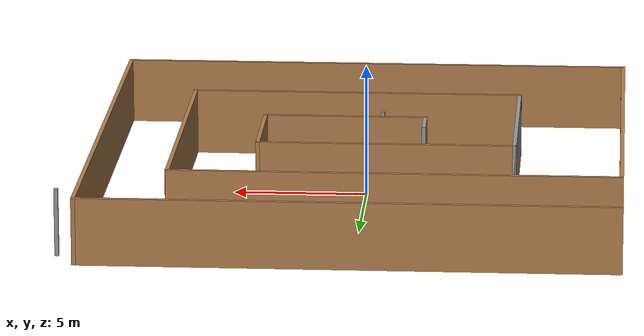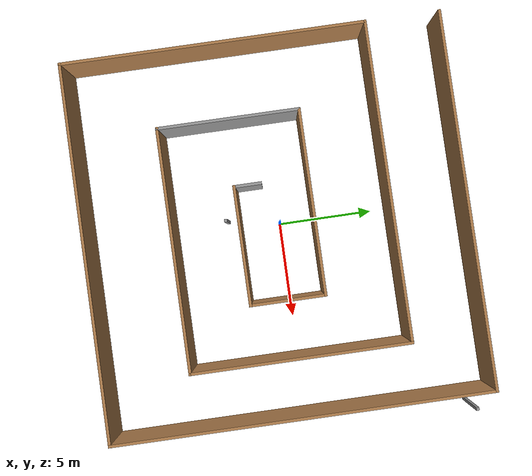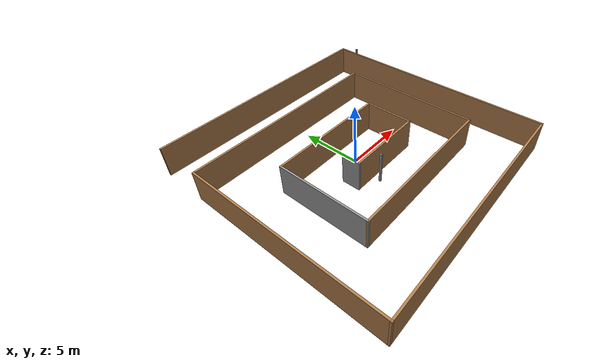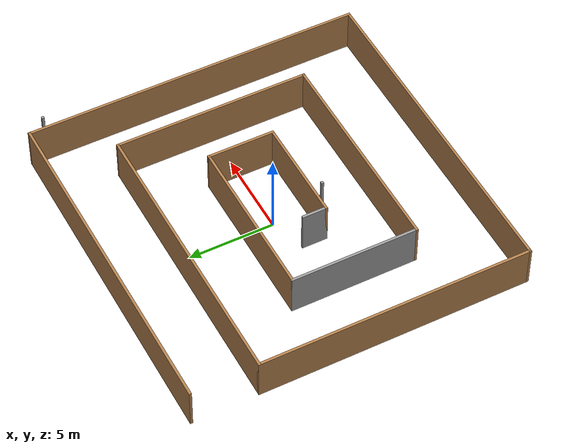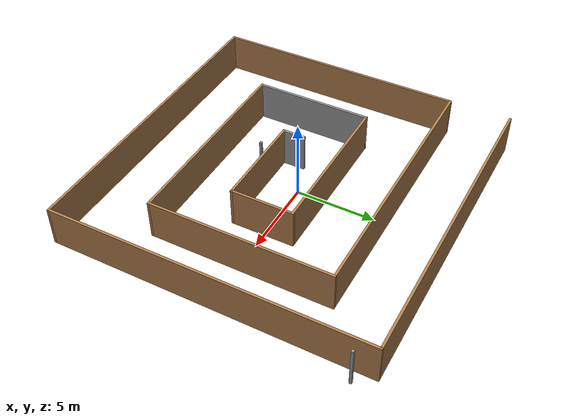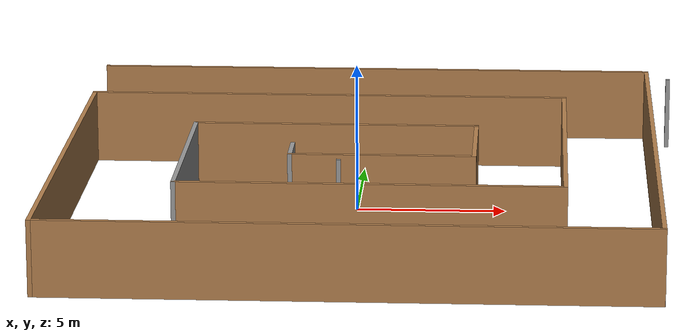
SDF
<?xml version='1.0'?>
<sdf version='1.7'>
  <model name='square_maze'>
    <pose>0.54846 -0.206686 0 0 -0 0</pose>
    <link name='Wall_16'>
      <collision name='Wall_16_Collision'>
        <geometry>
          <box>
            <size>0.15 0.15 2.5</size>
          </box>
        </geometry>
        <pose>0 0 1.25 0 -0 0</pose>
      </collision>
      <visual name='Wall_16_Visual'>
        <pose>0 0 1.25 0 -0 0</pose>
        <geometry>
          <box>
            <size>0.15 0.15 2.5</size>
          </box>
        </geometry>
        <material>
          <script>
            <uri>file://media/materials/scripts/gazebo.material</uri>
            <name>Gazebo/Grey</name>
          </script>
          <ambient>1 1 1 1</ambient>
        </material>
        <meta>
          <layer>0</layer>
        </meta>
      </visual>
      <pose>-1.01846 -2.51331 0 0 -0 0</pose>
    </link>
    <link name='Wall_28'>
      <collision name='Wall_28_Collision'>
        <geometry>
          <box>
            <size>0.15 0.15 2.5</size>
          </box>
        </geometry>
        <pose>0 0 1.25 0 -0 0</pose>
      </collision>
      <visual name='Wall_28_Visual'>
        <pose>0 0 1.25 0 -0 0</pose>
        <geometry>
          <box>
            <size>0.15 0.15 2.5</size>
          </box>
        </geometry>
        <material>
          <script>
            <uri>file://media/materials/scripts/gazebo.material</uri>
            <name>Gazebo/Grey</name>
          </script>
          <ambient>1 1 1 1</ambient>
        </material>
        <meta>
          <layer>0</layer>
        </meta>
      </visual>
      <pose>10.1715 8.75188 0 0 -0 0</pose>
    </link>
    <link name='Wall_68'>
      <collision name='Wall_68_Collision'>
        <geometry>
          <box>
            <size>19.8731 0.15 2.5</size>
          </box>
        </geometry>
        <pose>0 0 1.25 0 -0 0</pose>
      </collision>
      <visual name='Wall_68_Visual'>
        <pose>0 0 1.25 0 -0 0</pose>
        <geometry>
          <box>
            <size>19.8731 0.15 2.5</size>
          </box>
        </geometry>
        <material>
          <script>
            <uri>file://media/materials/scripts/gazebo.material</uri>
            <name>Gazebo/Wood</name>
          </script>
          <ambient>1 1 1 1</ambient>
        </material>
        <meta>
          <layer>0</layer>
        </meta>
      </visual>
      <pose>9.42852 -0 0 0 -0 -1.5708</pose>
    </link>
    <link name='Wall_69'>
      <collision name='Wall_69_Collision'>
        <geometry>
          <box>
            <size>19.75 0.15 2.5</size>
          </box>
        </geometry>
        <pose>0 0 1.25 0 -0 0</pose>
      </collision>
      <visual name='Wall_69_Visual'>
        <pose>0 0 1.25 0 -0 0</pose>
        <geometry>
          <box>
            <size>19.75 0.15 2.5</size>
          </box>
        </geometry>
        <material>
          <script>
            <uri>file://media/materials/scripts/gazebo.material</uri>
            <name>Gazebo/Wood</name>
          </script>
          <ambient>1 1 1 1</ambient>
        </material>
        <meta>
          <layer>0</layer>
        </meta>
      </visual>
      <pose>-0.371476 -9.86153 0 0 -0 3.14159</pose>
    </link>
    <link name='Wall_70'>
      <collision name='Wall_70_Collision'>
        <geometry>
          <box>
            <size>16 0.15 2.5</size>
          </box>
        </geometry>
        <pose>0 0 1.25 0 -0 0</pose>
      </collision>
      <visual name='Wall_70_Visual'>
        <pose>0 0 1.25 0 -0 0</pose>
        <geometry>
          <box>
            <size>16 0.15 2.5</size>
          </box>
        </geometry>
        <material>
          <script>
            <uri>file://media/materials/scripts/gazebo.material</uri>
            <name>Gazebo/Wood</name>
          </script>
          <ambient>1 1 1 1</ambient>
        </material>
        <meta>
          <layer>0</layer>
        </meta>
      </visual>
      <pose>-10.1715 -1.93653 0 0 -0 1.5708</pose>
    </link>
    <link name='Wall_71'>
      <collision name='Wall_71_Collision'>
        <geometry>
          <box>
            <size>16.75 0.15 2.5</size>
          </box>
        </geometry>
        <pose>0 0 1.25 0 -0 0</pose>
      </collision>
      <visual name='Wall_71_Visual'>
        <pose>0 0 1.25 0 -0 0</pose>
        <geometry>
          <box>
            <size>16.75 0.15 2.5</size>
          </box>
        </geometry>
        <material>
          <script>
            <uri>file://media/materials/scripts/gazebo.material</uri>
            <name>Gazebo/Wood</name>
          </script>
          <ambient>1 1 1 1</ambient>
        </material>
        <meta>
          <layer>0</layer>
        </meta>
      </visual>
      <pose>-1.87148 5.98847 0 0 -0 0</pose>
    </link>
    <link name='Wall_72'>
      <collision name='Wall_72_Collision'>
        <geometry>
          <box>
            <size>11.5 0.15 2.5</size>
          </box>
        </geometry>
        <pose>0 0 1.25 0 -0 0</pose>
      </collision>
      <visual name='Wall_72_Visual'>
        <pose>0 0 1.25 0 -0 0</pose>
        <geometry>
          <box>
            <size>11.5 0.15 2.5</size>
          </box>
        </geometry>
        <material>
          <script>
            <uri>file://media/materials/scripts/gazebo.material</uri>
            <name>Gazebo/Wood</name>
          </script>
          <ambient>1 1 1 1</ambient>
        </material>
        <meta>
          <layer>0</layer>
        </meta>
      </visual>
      <pose>6.42852 0.313472 0 0 -0 -1.5708</pose>
    </link>
    <link name='Wall_73'>
      <collision name='Wall_73_Collision'>
        <geometry>
          <box>
            <size>12.75 0.15 2.5</size>
          </box>
        </geometry>
        <pose>0 0 1.25 0 -0 0</pose>
      </collision>
      <visual name='Wall_73_Visual'>
        <pose>0 0 1.25 0 -0 0</pose>
        <geometry>
          <box>
            <size>12.75 0.15 2.5</size>
          </box>
        </geometry>
        <material>
          <script>
            <uri>file://media/materials/scripts/gazebo.material</uri>
            <name>Gazebo/Wood</name>
          </script>
          <ambient>1 1 1 1</ambient>
        </material>
        <meta>
          <layer>0</layer>
        </meta>
      </visual>
      <pose>0.128524 -5.36153 0 0 -0 3.14159</pose>
    </link>
    <link name='Wall_74'>
      <collision name='Wall_74_Collision'>
        <geometry>
          <box>
            <size>7.5 0.15 2.5</size>
          </box>
        </geometry>
        <pose>0 0 1.25 0 -0 0</pose>
      </collision>
      <visual name='Wall_74_Visual'>
        <pose>0 0 1.25 0 -0 0</pose>
        <geometry>
          <box>
            <size>7.5 0.15 2.5</size>
          </box>
        </geometry>
        <material>
          <script>
            <uri>file://media/materials/scripts/gazebo.material</uri>
            <name>Gazebo/Grey</name>
          </script>
          <ambient>1 1 1 1</ambient>
        </material>
        <meta>
          <layer>0</layer>
        </meta>
      </visual>
      <pose>-6.17148 -1.68653 0 0 -0 1.5708</pose>
    </link>
    <link name='Wall_75'>
      <collision name='Wall_75_Collision'>
        <geometry>
          <box>
            <size>9.75 0.15 2.5</size>
          </box>
        </geometry>
        <pose>0 0 1.25 0 -0 0</pose>
      </collision>
      <visual name='Wall_75_Visual'>
        <pose>0 0 1.25 0 -0 0</pose>
        <geometry>
          <box>
            <size>9.75 0.15 2.5</size>
          </box>
        </geometry>
        <material>
          <script>
            <uri>file://media/materials/scripts/gazebo.material</uri>
            <name>Gazebo/Wood</name>
          </script>
          <ambient>1 1 1 1</ambient>
        </material>
        <meta>
          <layer>0</layer>
        </meta>
      </visual>
      <pose>-1.37148 1.98847 0 0 -0 0</pose>
    </link>
    <link name='Wall_76'>
      <collision name='Wall_76_Collision'>
        <geometry>
          <box>
            <size>4 0.15 2.5</size>
          </box>
        </geometry>
        <pose>0 0 1.25 0 -0 0</pose>
      </collision>
      <visual name='Wall_76_Visual'>
        <pose>0 0 1.25 0 -0 0</pose>
        <geometry>
          <box>
            <size>4 0.15 2.5</size>
          </box>
        </geometry>
        <material>
          <script>
            <uri>file://media/materials/scripts/gazebo.material</uri>
            <name>Gazebo/Wood</name>
          </script>
          <ambient>1 1 1 1</ambient>
        </material>
        <meta>
          <layer>0</layer>
        </meta>
      </visual>
      <pose>3.42852 0.063472 0 0 -0 -1.5708</pose>
    </link>
    <link name='Wall_77'>
      <collision name='Wall_77_Collision'>
        <geometry>
          <box>
            <size>6.25 0.15 2.5</size>
          </box>
        </geometry>
        <pose>0 0 1.25 0 -0 0</pose>
      </collision>
      <visual name='Wall_77_Visual'>
        <pose>0 0 1.25 0 -0 0</pose>
        <geometry>
          <box>
            <size>6.25 0.15 2.5</size>
          </box>
        </geometry>
        <material>
          <script>
            <uri>file://media/materials/scripts/gazebo.material</uri>
            <name>Gazebo/Wood</name>
          </script>
          <ambient>1 1 1 1</ambient>
        </material>
        <meta>
          <layer>0</layer>
        </meta>
      </visual>
      <pose>0.378524 -1.86153 0 0 -0 3.14159</pose>
    </link>
    <link name='Wall_78'>
      <collision name='Wall_78_Collision'>
        <geometry>
          <box>
            <size>1.5 0.15 2.5</size>
          </box>
        </geometry>
        <pose>0 0 1.25 0 -0 0</pose>
      </collision>
      <visual name='Wall_78_Visual'>
        <pose>0 0 1.25 0 -0 0</pose>
        <geometry>
          <box>
            <size>1.5 0.15 2.5</size>
          </box>
        </geometry>
        <material>
          <script>
            <uri>file://media/materials/scripts/gazebo.material</uri>
            <name>Gazebo/Grey</name>
          </script>
          <ambient>1 1 1 1</ambient>
        </material>
        <meta>
          <layer>0</layer>
        </meta>
      </visual>
      <pose>-2.67148 -1.18653 0 0 -0 1.5708</pose>
    </link>
    <link name='Wall_80'>
      <collision name='Wall_80_Collision'>
        <geometry>
          <box>
            <size>19.75 0.15 2.5</size>
          </box>
        </geometry>
        <pose>0 0 1.25 0 -0 0</pose>
      </collision>
      <visual name='Wall_80_Visual'>
        <pose>0 0 1.25 0 -0 0</pose>
        <geometry>
          <box>
            <size>19.75 0.15 2.5</size>
          </box>
        </geometry>
        <material>
          <script>
            <uri>file://media/materials/scripts/gazebo.material</uri>
            <name>Gazebo/Wood</name>
          </script>
          <ambient>1 1 1 1</ambient>
        </material>
        <meta>
          <layer>0</layer>
        </meta>
      </visual>
      <pose>-0.371476 9.86153 0 0 -0 3.14159</pose>
    </link>
    <static>1</static>
  </model>
</sdf>
